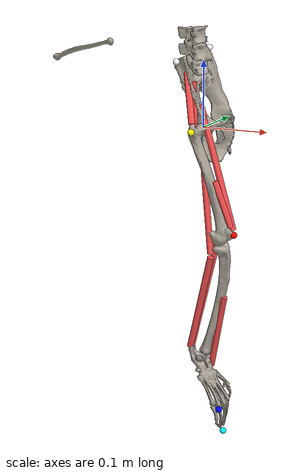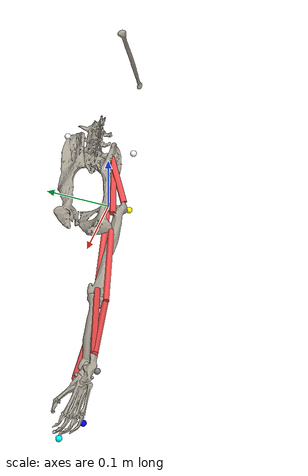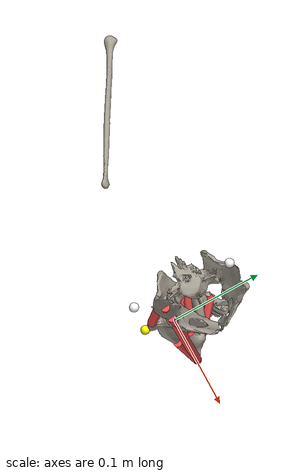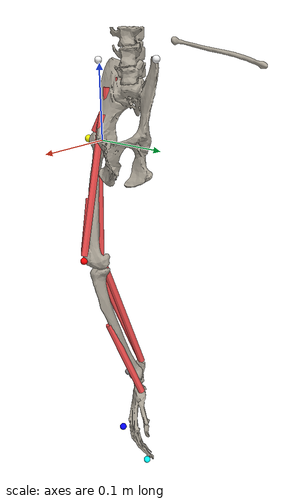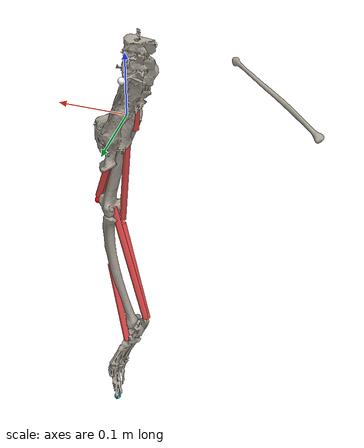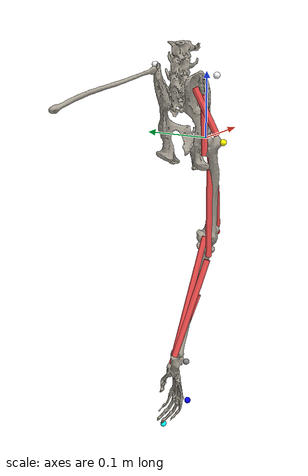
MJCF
<mujoco model="Murdoc">

    <compiler inertiafromgeom='true' angle='degree'/>
    <option gravity='0 0 0'/>
    <asset>
		<!-- Sets sky rendering
		-->
        <texture type="something_else" builtin="gradient" width="100" height="100" rgb1="0 0 0"
            rgb2="0 0 0"/>
		<!-- Not clear to me where this is used yet
		-->
        <texture name="texgeom" type="cube" builtin="flat" mark="cross" width="127" height="1278"
            rgb1="0.1 0.8 0.1" rgb2="0.8 0.6 0.4" markrgb="1 1 1" random="0.01"/>
		<!-- Sets floor rendering
		-->
        <texture name="texplane" type="2d" builtin="checker" rgb1=".2 .3 .4" rgb2=".1 0.15 0.2"
            width="1000" height="1000"/>
        <texture name='bone_texture' type="cube" file="../Resources/Murdoc/Bone.png"/>
		<!-- Create materials based on textures above
		-->
        <material name='MatPlane' reflectance='0.5' texture="texplane"/>
        <material name='geom' texture="texgeom" texuniform="true"/>
        <material name='bone' texture='bone_texture' reflectance='0' texuniform='true' specular='0' shininess='0'/>

        <mesh file="../Resources/Murdoc/femur.stl" scale='1e-3 1e-3 1e-3' />
        <mesh file="../Resources/Murdoc/sacrum_notail.stl" scale='1e-3 1e-3 1e-3' />
        <mesh file="../Resources/Murdoc/fibula.stl" scale='1e-3 1e-3 1e-3' />
        <mesh file="../Resources/Murdoc/foot.stl" scale='1e-3 1e-3 1e-3' />
        <mesh file="../Resources/Murdoc/tibia.stl" scale='1e-3 1e-3 1e-3' />

    </asset>

	<default>
    <site type="sphere" rgba=".2 .2 .5 .1" size="5e-3"/>
        <camera pos='1 1 1' euler='90 0 0'/>

		<default class='HAT'>
			<geom density='1.55e-3' type='capsule' size='1.56e-3 241e-3' />
<!-- Remember to add m1 = 0 and m2 = 31 and  delta_m = 68.78
-->
		</default>
		<default class='pelvis'>
			<geom mass='1776e-3' type='capsule' size='1.56e-3 31.43e-3' />
		</default>

    <default class='thigh'>
      <geom density='2.89e-3' type='capsule' size='1.56e-3 81.5e-3' />
    <!-- Remember to add m1 = 37.14 and m2 = 48.27
    -->
    </default>
    <default class='shin'>
      <geom density='0.87e-3' type='capsule' size='1.56e-3 91e-3' />
    <!-- Remember to add m1 = 39.67 and m2 = 0 and delta_m = 25.9
    -->
    </default>
    <default class='foot_cap'>
      <geom density='0.14e-3' type='capsule' size='1.56e-3 37e-3' />
    <!-- Remember to add m1 = 33.28 and m2 = 57.52 and delta_m = 0
    -->
    </default>

		<default class='hip_joint_x'>
      <joint type='hinge' axis='0 1 0' ref='0' range='-40 150' limited='true' armature='0.0001' stiffness='0' springref='0'/>
		</default>
		<default class='hip_joint_z'>
            <joint type='hinge' axis='0 0 1' range='-10 10' damping='5' limited='true' stiffness='0' armature='0.0080' />
		</default>
		<default class = 'knee_joint'>
			<joint type='hinge' axis='1 0 0' range='-120 40' limited='true'  armature='0.0006'  stiffness='0' springref='0'/>
		</default>
		<default class = 'ankle_joint_x'>
			<joint type='hinge' axis='1 0 0' pos='0 0 0' range='-60 120' limited='true'  armature='0.0006' stiffness='0' springref='0'/>
		</default>
	</default>

	<worldbody>
        <light directional='true' diffuse='1 1 1' specular='0 0 0' pos='0 0 40.5' dir='0 1 0'/>

        <body name='lower_body' pos='0 0 0' euler='0 0 0'>
          <!-- Details on attributes of geoms here: http://mujoco.org/book/modeling.html
			    -->
        <body name='pelvis' pos='0 0 0' euler='180 0 10'>

          <joint name='world_x' type='hinge' axis='1 0 0' pos='0 0 0' limited='false' />

          <joint name='world_y' type='hinge' axis='0 1 0' pos='0 0 0' limited='false' />

          <joint name='world_z' type='hinge' axis='0 0 1' pos='0 0 0' limited='false' />

          <joint name='world_xt' type='slide' axis='1 0 0' pos='0 0 0' limited='false' />

          <joint name='world_yt' type='slide' axis='0 1 0' pos='0 0 0' limited='false' />

          <joint name='world_zt' type='slide' axis='0 0 1' pos='0 0 0' limited='false' />

         <site name="l_BF_pelvis" pos='3.8564e-3	4.991e-3	48.1993e-3' rgba='1 0 0 0'/>
         <site name="l_RF_pelvis" pos='15.3e-3 -6.4e-3 33e-3' rgba='1 0 0 0'/>
         <site name="l_GMED_pelvis" pos='16.5e-3 9.8e-3 80.6e-3' rgba='1 0 0 0'/>
         <site name="l_IL_pelvis" pos='7e-3 -21.5e-3 17.3e-3' rgba='1 0 0 0'/>

         <site name="right_iliac_crest" group='1' pos='-24.0141e-3	35.947e-3	-99.572e-3' rgba='1 1 1 1' size='5e-3'/>
         <site name="left_iliac_crest" group='1' pos='-35.7444e-3	-70.1058e-3	-108.021e-3' rgba='1 1 1 1' size='5e-3'/>

         <geom type='mesh' mesh='sacrum_notail' density='1' pos='0 0 0' euler='0 0 0' rgba='0.651 0.623 0.572 1'/>

         <site name="r_GMED_pelvis" pos='-29.2209e-3	-0.117e-3	-79.272e-3' rgba='0 0 1 0'/>
         <site name="r_IL_pelvis" pos='-14.6358e-3	5.703e-3	-67.929e-3' rgba='0 0 1 0'/>
         <site name="r_RF_pelvis" pos='-2.9984e-3	2.326e-3	-33.912e-3' rgba='0 0 1 0'/>
         <site name="r_BF_pelvis" pos='3.8564e-3	4.991e-3	48.1993e-3' rgba='0 0 1 0'/>

        <body name='right_hip_holder' pos='0 0 0' euler='0 -90 0'>
          <site name="right_hip" group='1' pos='2.7899e-3	32.436e-3	0.213e-3' rgba='1 1 0 1' size='5e-3'/>
        </body>

			  <body name='right_leg' pos='0 0 0' euler='0 -90 0'>

              	 <joint name='right_hip_x' class='hip_joint_x' axis='0.1131e-3 0.9931e-3 0.0302e-3' pos='0 0 0'/>
                 <joint name='right_hip_z' class='hip_joint_z' axis='0 0 1' pos='0 0 0'/>

				          <geom type='mesh' mesh='femur' density='1' pos='0 0 0' euler='0 0 0' rgba='0.651 0.623 0.572 1'/>

                  <site name="r_GMED_femur" pos='-7.6819e-3	23.556e-3	4.782e-3' rgba='0 0 1 0'/>

                  <site name="r_IL_femur" pos='24.0802e-3	5.251e-3	10.085e-3' rgba='0 0 1 0'/>
                  <site name="r_IL_front" pos='16e-3 12.3e-3 -34.7e-3' rgba='0 0 1 0'/>

                  <site name="r_VAS_femur" pos='77.6612e-3	3.441e-3	-23.06e-3' rgba='0 0 1 0'/>
                  <site name="r_GAS_femur" pos='162.1222e-3	-14.371e-3	-20.251e-3' rgba='0 0 1 0'/>

                  <site name="right_knee" pos='159.4922e-3	-11.721e-3	-47.565e-3' rgba='1 0 0 1' size='5e-3'/>

				              <body name='right_shin' pos='0 0 0' euler='0 0 0'>

                            <geom type='mesh' mesh='tibia' density='1' pos='0 0 0' euler='0 0 0' rgba='0.651 0.623 0.572 1'/>
                            <geom type='mesh' mesh='fibula' density='1' pos='0 0 0' euler='0 0 0' rgba='0.651 0.623 0.572 1'/>

                            <site name="r_VAS_tibia" pos='147.1432e-3	-9.128e-3	-44.144e-3' rgba='0 0 1 0'/>
                            <site name="r_TA_tibia" pos='263.0032e-3	-27.913e-3	-21.644e-3' rgba='0 0 1 0'/>
                            <site name="r_SOL_tibia" pos='196.7532e-3	-3.499e-3	-12.453e-3' rgba='0 0 1 0'/>
                            <site name="r_RF_tibia" pos='151.7812e-3	-11.507e-3	-46.478e-3' rgba='0 0 1 0'/>
                            <site name="r_BF_tibia" pos='190.5792e-3	-1.834e-3	-13.138e-3' rgba='0 0 1 0'/>

                            <joint name='right_knee' class='knee_joint' axis='0.1131e-3 0.9931e-3 0.0302e-3'  pos='175.4562e-3	-14.72e-3	-26.435e-3'/>

					                   <body name='right_foot' pos='0 0 0' >

                               <geom type='mesh' mesh='foot' density='1' pos='0 0 0' euler='0 0 0' rgba='0.651 0.623 0.572 1'/>

                               <site name="right_ankle" pos='364.8322e-3	-20.135e-3	17.4205e-3' rgba='0.5 0.5 0.5 1' size='5e-3'/>
                               <site name="right_knuckle" pos='447.6002e-3	-36.538e-3	-8.188e-3' rgba='0 0 1 1' size='5e-3'/>
                               <site name="right_toe" pos='496.8022e-3	-74.9337e-3	7.715e-3' rgba='0 1 1 1' size='5e-3'/>

                               <site name="r_TA_ankle" pos='383.6482e-3	-53.322e-3	16.6331e-3' rgba='0 0 1 0'/>
                               <site name="r_SOL_ankle" pos='350.7062e-3	-27.229e-3	38.4954e-3' rgba='0 0 1 0'/>
                               <site name="r_GAS_ankle" pos='349.0272e-3	-28.881e-3	36.849e-3' rgba='0 0 1 0'/>

                               <joint name='right_ankle_x' class='ankle_joint_x' axis='0.1131e-3 0.9931e-3 0.0302e-3'  pos='361.1542e-3	-32.145e-3	17.764e-3'/>
					                    </body>
					                         <!-- End foot
					                            -->
				              </body>
				                    <!-- End shin
				                      -->
			      </body>
			         <!-- End leg
			          -->

			      <body name='left_leg' pos='0 0 0' euler='0 -90 0'>
              <site name="left_hip" group='1' pos='-6.2846e-3	-102.2366e-3	-5.966e-3' rgba='1 1 0 0' size='5e-3'/>

              <geom class="thigh" name='left_thigh' pos='0 0 -81.5e-3' euler='0 0 0' rgba="0.5 0.5 0.5 0"/>
              <geom mass='37.14e-3' name='left_thigh_top_mass' pos='0 0 0' type='sphere' size='5e-3' rgba="0.5 0.5 0.5 0"/>
              <geom mass='1e-3' name='left_thigh_mid_mass' pos='0 0 -81.5e-3' type='sphere' size='5e-3' rgba="0.5 0.5 0.5 0"/>
              <geom mass='48.27e-3' name='left_thigh_bot_mass' pos='0 0 -163e-3' type='sphere' size='5e-3' rgba="0.5 0.5 0.5 0"/>

              <site name="l_GMED_femur" pos='0 -6.9e-3 -2.3e-3' rgba='1 0 0 0'/>

              <site name="l_IL_femur" pos='-16e-3 12.3e-3 -24.7e-3' rgba='1 0 0 0'/>
              <site name="l_IL_front" pos='-16e-3 12.3e-3 -34.7e-3' rgba='1 0 0 0'/>

              <site name="l_VAS_femur" pos='12e-3 -7.9e-3 -82.2e-3' rgba='1 0 0 0'/>
              <site name="l_GAS_femur" pos='-8e-3 4.9e-3 -155.3e-3' rgba='1 0 0 0'/>

				      <body name='left_shin' pos='0 0 -163e-3' euler='0 0 0'>
					          <geom name='left_shin' pos='0 0 -91e-3' class='shin' rgba="0.5 0.5 0.5 0"/>
                    <geom mass='39.67e-3' name='left_shin_top_mass' pos='0 0 0' type='sphere' size='5e-3' rgba="0.5 0.5 0.5 0"/>
                    <geom mass='25.9e-3' name='left_shin_mid_mass' pos='0 0 -91e-3' type='sphere' size='5e-3' rgba="0.5 0.5 0.5 0"/>
                    <geom mass='1e-3' name='left_shin_bot_mass' pos='0 0 -182e-3' type='sphere' size='5e-3' rgba="0.5 0.5 0.5 0"/>

                    <site name="l_VAS_tibia" pos='3.1e-3 -16.8e-3 11e-3' rgba='1 0 0 0'/>
                    <site name="l_TA_tibia" pos='0 2.2e-3 -73.3e-3' rgba='1 0 0 0'/>
                    <site name="l_SOL_tibia" pos='13.3e-3 14.9e-3 -39.4e-3' rgba='1 0 0 0'/>
                    <site name="l_RF_tibia" pos='2.9e-3 -17.4e-3 10.6e-3' rgba='1 0 0 0'/>
                    <site name="l_BF_tibia" pos='14e-3 2.6e-3 -32.8e-3' rgba='1 0 0 0'/>

                    <site name="left_knee" pos='0 0 0' rgba='1 0 0 0'/>

					          <joint name='left_knee' class = 'knee_joint'/>
					          <body name='left_foot' pos='0 0 -182e-3' >
						                 <geom class='foot_cap' pos='0 -37e-3 0' euler='90 0 0' name='left_foot_cap' rgba="0.5 0.5 0.5 0"/>
                             <geom mass='33.28e-3' name='left_foot_top_mass' pos='0 0 0' euler='0 90 0' type='cylinder'  size='5e-3 10e-3' rgba="0.5 0.5 0.5 0"/>
                             <geom mass='1e-3' name='left_foot_mid_mass' pos='0 -37e-3 0' type='sphere' size='5e-3' rgba="0.5 0.5 0.5 0"/>
                             <geom mass='57.52e-3' name='left_foot_bot_mass' pos='0  -74e-3 0' euler='0 90 0' type='cylinder'  size='5e-3 10e-3' rgba="0.5 0.5 0.5 0"/>

                             <site name="left_ankle" pos='0 0 0' rgba='1 0 0 0'/>
                             <site name="left_knuckle" pos='0 0 0' rgba='1 0 0 0'/>
                             <site name="left_toe" pos='0 -74e-3 0' rgba='1 0 0 0'/>

                             <site name="l_TA_ankle" pos='-7.2e-3 -22.2e-3 -10.5e-3' rgba='1 0 0 0'/>
                             <site name="l_SOL_ankle" pos='14e-3 20e-3 -3.2e-3' rgba='1 0 0 0'/>
                             <site name="l_GAS_ankle" pos='13.3e-3 22e-3 -2.2e-3' rgba='1 0 0 0'/>

						                 <joint name='left_ankle_x' class='ankle_joint_x'/>
					           </body>
					                <!-- End foot
					                -->
				      </body>
				          <!-- End shin
				          -->
			      </body>
			         <!-- End leg
			         -->
         </body>
         <!--
         End Pelvis
       -->
		    </body>
		      <!-- End Lower body
		      -->
	</worldbody>

  <tendon>
    <spatial name="r_IL" stiffness="0" width="0.005" rgba=".95 .3 .3 1" limited="false" range="0 0.33">
      <site site='r_IL_pelvis'/>
      <site site='r_IL_femur'/>
    </spatial>

  <spatial name="r_GMED" stiffness="0" width="0.005" rgba=".95 .3 .3 1" limited="false" range="0 0.33">
    <site site='r_GMED_pelvis'/>
    <site site='r_GMED_femur'/>
  </spatial>

  <spatial name='r_VAS' stiffness="0" width="0.005" rgba=".95 .3 .3 1" limited="false" range="0 0.33">
    <site site='r_VAS_femur'/>
    <site site='r_VAS_tibia'/>
  </spatial>

  <spatial name='r_TA' stiffness="0" width="0.005" rgba=".95 .3 .3 1" limited="false" range="0 0.33">
    <site site='r_TA_tibia'/>
    <site site='r_TA_ankle'/>
  </spatial>

  <spatial name='r_SOL' stiffness="0" width="0.005" rgba=".95 .3 .3 1" limited="false" range="0 0.33">
    <site site='r_SOL_tibia'/>
    <site site='r_SOL_ankle'/>
  </spatial>

  <spatial name='r_RF' stiffness="0" width="0.005" rgba=".95 .3 .3 1" limited="false" range="0 0.33">
    <site site='r_RF_pelvis'/>
    <site site='r_RF_tibia'/>
  </spatial>

  <spatial name='r_BF' stiffness="0" width="0.005" rgba=".95 .3 .3 1" limited="false" range="0 0.33">
    <site site='r_BF_pelvis'/>
    <site site='r_BF_tibia'/>
  </spatial>

  <spatial name='r_GAS' stiffness="0" width="0.005" rgba=".95 .3 .3 1" limited="false" range="0 0.33">
    <site site='r_GAS_femur'/>
    <site site='r_GAS_ankle'/>
  </spatial>

    <spatial name="l_IL" stiffness="0" width="0.002" rgba=".95 .3 .3 0" limited="false" range="0 0.33">
        <site site='l_IL_pelvis'/>
        <site site='l_IL_femur'/>
    </spatial>
    <spatial name="l_GMED" stiffness="0" width="0.002" rgba=".95 .3 .3 0" limited="false" range="0 0.33">
      <site site='l_GMED_pelvis'/>
      <site site='l_GMED_femur'/>
    </spatial>
    <spatial name='l_VAS' stiffness="0" width="0.002" rgba=".95 .3 .3 0" limited="false" range="0 0.33">
      <site site='l_VAS_femur'/>
      <site site='l_VAS_tibia'/>
    </spatial>
    <spatial name='l_TA' stiffness="0" width="0.002" rgba=".95 .3 .3 0" limited="false" range="0 0.33">
      <site site='l_TA_tibia'/>
      <site site='l_TA_ankle'/>
    </spatial>
    <spatial name='l_SOL' stiffness="0" width="0.002" rgba=".95 .3 .3 0" limited="false" range="0 0.33">
      <site site='l_SOL_tibia'/>
      <site site='l_SOL_ankle'/>
    </spatial>

    <spatial name='l_RF' stiffness="0" width="0.002" rgba=".95 .3 .3 0" limited="false" range="0 0.33">
      <site site='l_RF_pelvis'/>
      <geom geom='left_thigh_top_mass'/>
      <site site='l_RF_tibia'/>
    </spatial>

  <spatial name='l_BF' stiffness="0" width="0.002" rgba=".95 .3 .3 0" limited="false" range="0 0.33">
    <site site='l_BF_pelvis'/>
    <geom geom='left_thigh_top_mass'/>
    <site site='l_BF_tibia'/>
  </spatial>
  <spatial name='l_GAS' stiffness="0" width="0.002" rgba=".95 .3 .3 0" limited="false" range="0 0.33">
    <site site='l_GAS_femur'/>
    <site site='l_GAS_ankle'/>
  </spatial>
</tendon>

<actuator>
  <general name='r_IL'   gear='1' tendon='r_IL'   ctrllimited='true' ctrlrange='-1 1' gainprm='642' biastype="affine" biasprm='0 0 -91'/>
  <general name='l_IL'   gear='1' tendon='l_IL'   ctrllimited='true' ctrlrange='-1 1' gainprm='642' biastype="affine" biasprm='0 0 -91'/>

  <general name='r_GMED' gear='1' tendon='r_GMED' ctrllimited='true' ctrlrange='-1 1' gainprm='738' biastype="affine" biasprm='0 0 -91'/>
  <general name='l_GMED' gear='1' tendon='l_GMED' ctrllimited='true' ctrlrange='-1 1' gainprm='738' biastype="affine" biasprm='0 0 -91'/>

  <general name='r_VAS'  gear='1' tendon='r_VAS'  ctrllimited='true' ctrlrange='-1 1' gainprm='2514' biastype="affine" biasprm='0 0 -100'/>
  <general name='l_VAS'  gear='1' tendon='l_VAS'  ctrllimited='true' ctrlrange='-1 1' gainprm='2514' biastype="affine" biasprm='0 0 -100'/>

  <general name='r_TA'   gear='1' tendon='r_TA'   ctrllimited='true' ctrlrange='-1 1' gainprm='390' biastype="affine" biasprm='0 0 -66'/>
  <general name='l_TA'   gear='1' tendon='l_TA'   ctrllimited='true' ctrlrange='-1 1' gainprm='390' biastype="affine" biasprm='0 0 -66'/>

  <general name='r_SOL'  gear='1' tendon='r_SOL'  ctrllimited='true' ctrlrange='-1 1' gainprm='822' biastype="affine" biasprm='0 0 -66'/>
  <general name='l_SOL'  gear='1' tendon='l_SOL'  ctrllimited='true' ctrlrange='-1 1' gainprm='822' biastype="affine" biasprm='0 0 -66'/>

  <general name='r_RF'   gear='1' tendon='r_RF'   ctrllimited='true' ctrlrange='-1 1' gainprm='720' biastype="affine" biasprm='0 0 -100'/>
  <general name='l_RF'   gear='1' tendon='l_RF'   ctrllimited='true' ctrlrange='-1 1' gainprm='720' biastype="affine" biasprm='0 0 -100'/>

  <general name='r_BF'   gear='1' tendon='r_BF'   ctrllimited='true' ctrlrange='-1 1' gainprm='804' biastype="affine" biasprm='0 0 -91'/>
  <general name='l_BF'   gear='1' tendon='l_BF'   ctrllimited='true' ctrlrange='-1 1' gainprm='804' biastype="affine" biasprm='0 0 -91'/>

  <general name='r_GAS'  gear='1' tendon='r_GAS'  ctrllimited='true' ctrlrange='-1 1' gainprm='720' biastype="affine" biasprm='0 0 -91'/>
  <general name='l_GAS'  gear='1' tendon='l_GAS'  ctrllimited='true' ctrlrange='-1 1' gainprm='720' biastype="affine" biasprm='0 0 -91'/>
</actuator>
    <keyframe>
        <key time="0" qpos="0 -0.25 0 0 0 0 0.4 0 -0.65 0.9 0 0" />
    </keyframe>
</mujoco>
